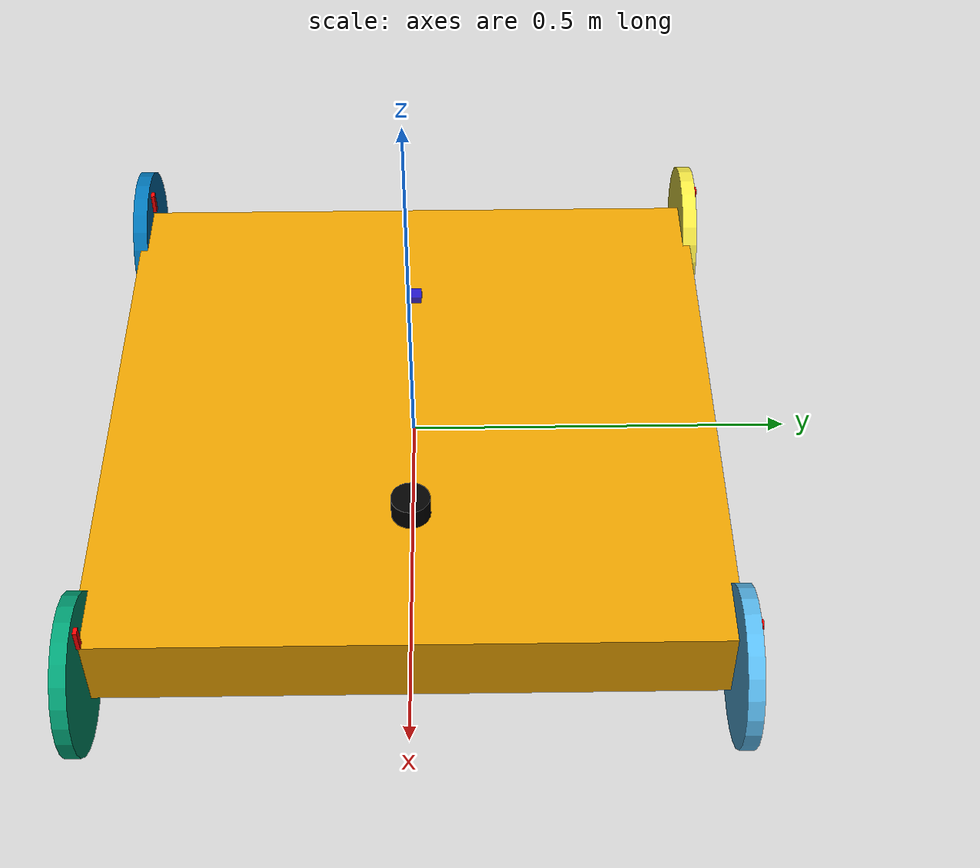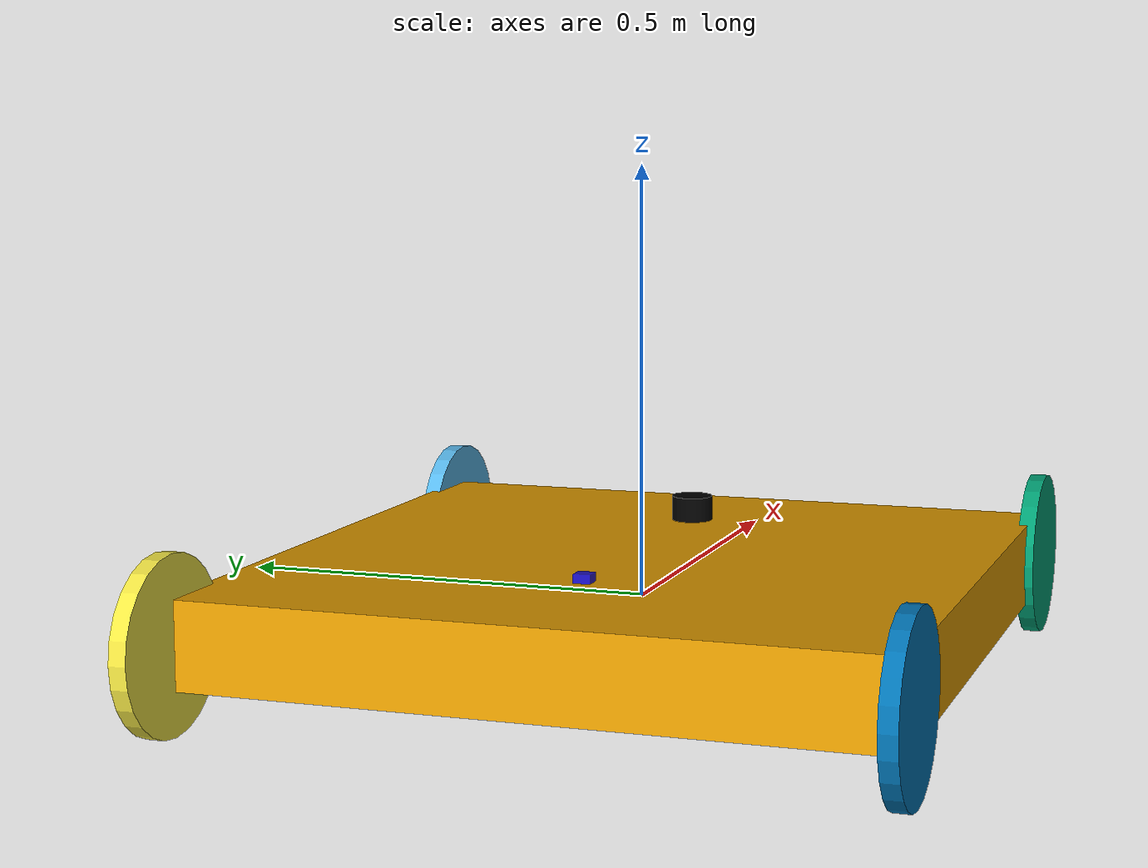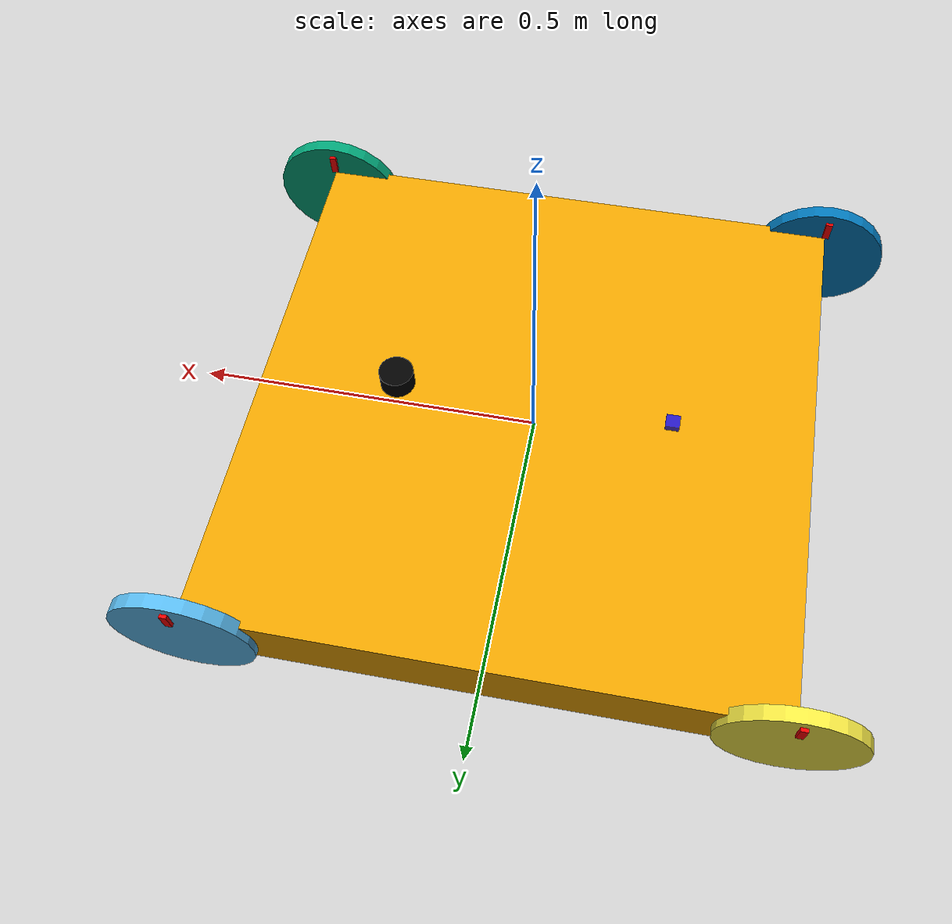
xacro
<?xml version="1.0"?>
<robot xmlns:xacro="http://www.ros.org/wiki/xacro" name="myfirst">

  <link name="base_link">
    <visual>
      <geometry>
        <!-- 长方体的长宽高 -->
        <box size="0.8 0.8 0.1" />
      </geometry>
      <origin xyz="0 0 0" rpy="0 0 0" />
    </visual>
    <collision>
      <geometry><box size="0.8 0.8 0.1"/></geometry>
    </collision>
    <inertial>
      <mass value="10.0"/>
      <inertia ixx="0.542" ixy="0" ixz="0" iyy="0.542" iyz="0" izz="1.067"/>
    </inertial>
  </link>

  <link name="left_front_wheel">
    <visual>
      <!-- 只管朝向:圆柱默认轴 z,转 90° 让轮轴沿 y -->
      <origin xyz="0 0 0" rpy="${pi/2} 0 0"/>
      <geometry><cylinder radius="0.1" length="0.02"/></geometry>
    </visual>
    <!-- 转动标记:纯色圆柱绕轴转看不出来,贴个红块让旋转可见 -->
    <visual>
      <origin xyz="0 0.012 0.07" rpy="0 0 0"/>
      <geometry><box size="0.01 0.006 0.03"/></geometry>
      <material name="red"/>
    </visual>
    <collision>
      <origin xyz="0 0 0" rpy="${pi/2} 0 0"/>
      <geometry><cylinder radius="0.1" length="0.02"/></geometry>
    </collision>
    <inertial>
      <mass value="1.0"/>
      <inertia ixx="0.00253" ixy="0" ixz="0" iyy="0.005" iyz="0" izz="0.00253"/>
    </inertial>
  </link>

  <!-- 没有 joint 就没有 TF,RViz 会把轮子整个隐藏 -->
  <joint name="left_front_wheel_joint" type="continuous">
    <parent link="base_link"/>
    <child link="left_front_wheel"/>
    <origin xyz="0.4 0.4 0" rpy="0 0 0"/>
    <axis xyz="0 1 0"/>
  </joint>

  <link name="right_front_wheel">
    <visual>
      <!-- 只管朝向:圆柱默认轴 z,转 90° 让轮轴沿 y -->
      <origin xyz="0 0 0" rpy="${pi/2} 0 0"/>
      <geometry><cylinder radius="0.1" length="0.02"/></geometry>
    </visual>
    <!-- 转动标记:纯色圆柱绕轴转看不出来,贴个红块让旋转可见 -->
    <visual>
      <origin xyz="0 0.012 0.07" rpy="0 0 0"/>
      <geometry><box size="0.01 0.006 0.03"/></geometry>
      <material name="red"/>
    </visual>
    <collision>
      <origin xyz="0 0 0" rpy="${pi/2} 0 0"/>
      <geometry><cylinder radius="0.1" length="0.02"/></geometry>
    </collision>
    <inertial>
      <mass value="1.0"/>
      <inertia ixx="0.00253" ixy="0" ixz="0" iyy="0.005" iyz="0" izz="0.00253"/>
    </inertial>
  </link>

  <!-- 没有 joint 就没有 TF,RViz 会把轮子整个隐藏 -->
  <joint name="right_front_wheel_joint" type="continuous">
    <parent link="base_link"/>
    <child link="right_front_wheel"/>
    <origin xyz="0.4 -0.4 0" rpy="0 0 0"/>
    <axis xyz="0 1 0"/>
  </joint>

  <link name="left_back_wheel">
    <visual>
      <!-- 只管朝向:圆柱默认轴 z,转 90° 让轮轴沿 y -->
      <origin xyz="0 0 0" rpy="${pi/2} 0 0"/>
      <geometry><cylinder radius="0.1" length="0.02"/></geometry>
    </visual>
    <!-- 转动标记:纯色圆柱绕轴转看不出来,贴个红块让旋转可见 -->
    <visual>
      <origin xyz="0 0.012 0.07" rpy="0 0 0"/>
      <geometry><box size="0.01 0.006 0.03"/></geometry>
      <material name="red"/>
    </visual>
    <collision>
      <origin xyz="0 0 0" rpy="${pi/2} 0 0"/>
      <geometry><cylinder radius="0.1" length="0.02"/></geometry>
    </collision>
    <inertial>
      <mass value="1.0"/>
      <inertia ixx="0.00253" ixy="0" ixz="0" iyy="0.005" iyz="0" izz="0.00253"/>
    </inertial>
  </link>

  <!-- 没有 joint 就没有 TF,RViz 会把轮子整个隐藏 -->
  <joint name="left_back_wheel_joint" type="continuous">
    <parent link="base_link"/>
    <child link="left_back_wheel"/>
    <origin xyz="-0.4 0.4 0" rpy="0 0 0"/>
    <axis xyz="0 1 0"/>
  </joint>

  <link name="right_back_wheel">
    <visual>
      <!-- 只管朝向:圆柱默认轴 z,转 90° 让轮轴沿 y -->
      <origin xyz="0 0 0" rpy="${pi/2} 0 0"/>
      <geometry><cylinder radius="0.1" length="0.02"/></geometry>
    </visual>
    <!-- 转动标记:纯色圆柱绕轴转看不出来,贴个红块让旋转可见 -->
    <visual>
      <origin xyz="0 0.012 0.07" rpy="0 0 0"/>
      <geometry><box size="0.01 0.006 0.03"/></geometry>
      <material name="red"/>
    </visual>
    <collision>
      <origin xyz="0 0 0" rpy="${pi/2} 0 0"/>
      <geometry><cylinder radius="0.1" length="0.02"/></geometry>
    </collision>
    <inertial>
      <mass value="1.0"/>
      <inertia ixx="0.00253" ixy="0" ixz="0" iyy="0.005" iyz="0" izz="0.00253"/>
    </inertial>
  </link>

  <!-- 没有 joint 就没有 TF,RViz 会把轮子整个隐藏 -->
  <joint name="right_back_wheel_joint" type="continuous">
    <parent link="base_link"/>
    <child link="right_back_wheel"/>
    <origin xyz="-0.4 -0.4 0" rpy="0 0 0"/>
    <axis xyz="0 1 0"/>
  </joint>

  <!-- 顶部统一定义材质,全局一次 -->
<material name="blue"><color rgba="0 0 1 0.8"/></material>
<material name="black"><color rgba="0 0 0 0.9"/></material>
<material name="red"><color rgba="1 0 0 1"/></material>

<!-- ============ IMU:一个小盒,装在底盘中心上方 ============ -->
<link name="imu_link">
  <visual>
    <geometry><box size="0.02 0.02 0.01"/></geometry>
    <material name="blue"/>
  </visual>
  <inertial>
    <mass value="0.01"/>
    <inertia ixx="4.2e-7" ixy="0" ixz="0" iyy="4.2e-7" iyz="0" izz="6.7e-7"/>
  </inertial>
</link>
<joint name="imu_joint" type="fixed">
  <parent link="base_link"/>
  <child link="imu_link"/>
  <origin xyz="-0.2 0 0.06" rpy="0 0 0"/>   <!-- 这就是 IMU 的安装外参 -->
</joint>

<!-- ============ 激光雷达:一个扁圆柱,装在车头 ============ -->
<link name="laser_link">
  <visual>
    <geometry><cylinder radius="0.025" length="0.03"/></geometry>
    <material name="black"/>
  </visual>
  <inertial>
    <mass value="0.05"/>
    <inertia ixx="1.16e-5" ixy="0" ixz="0" iyy="1.16e-5" iyz="0" izz="1.56e-5"/>
  </inertial>
</link>
<joint name="laser_joint" type="fixed">
  <parent link="base_link"/>
  <child link="laser_link"/>
  <origin xyz="0.2 0 0.07" rpy="0 0 0"/>    <!-- 雷达安装位姿,必须与实物/仿真一致 -->
</joint>

<ros2_control name="MyRobotGazeboSystem" type="system">   <!-- name 随意;type: system/sensor/actuator -->
  <hardware>
    <plugin>gazebo_ros2_control/GazeboSystem</plugin>     <!-- 核心一格:选硬件后端,见下 -->
  </hardware>

    <joint name="left_front_wheel_joint">
      <command_interface name="velocity">
        <param name="min">-1</param>
        <param name="max">1</param>
      </command_interface>
      <state_interface name="position"/>
      <state_interface name="velocity"/>
    </joint>
    <joint name="right_front_wheel_joint">
      <command_interface name="velocity">
        <param name="min">-1</param>
        <param name="max">1</param>
      </command_interface>
      <state_interface name="position"/>
      <state_interface name="velocity"/>
    </joint>
    <joint name="left_back_wheel_joint">
      <command_interface name="velocity">
        <param name="min">-1</param>
        <param name="max">1</param>
      </command_interface>
      <state_interface name="position"/>
      <state_interface name="velocity"/>
    </joint>
    <joint name="right_back_wheel_joint">
      <command_interface name="velocity">
        <param name="min">-1</param>
        <param name="max">1</param>
      </command_interface>
      <state_interface name="position"/>
      <state_interface name="velocity"/>
    </joint></ros2_control>

<gazebo>
  <plugin filename="ign_ros2_control-system" name="ign_ros2_control::IgnitionROS2ControlPlugin">
    <parameters>$(find myrobot_description)/config/ros2_controller.yaml</parameters>
    <ros>
      <remapping>/diff_drive_controller/cmd_vel_unstamped:=/cmd_vel</remapping>
      <remapping>/diff_drive_controller/odom:=/odom</remapping>
    </ros>
  </plugin>
</gazebo>

<gazebo reference="laser_link">
  <sensor name="laser" type="gpu_lidar">
    <pose>0 0 0 0 0 0</pose>
    <visualize>true</visualize>              <!-- 在 Gazebo 里画出红色扫描线 -->
    <update_rate>10</update_rate>
    <topic>scan</topic>            <!-- 发到 Ignition 传输层,由桥接转成 ROS /scan -->            <!-- 每秒 10 帧扫描 -->
    <ray>
      <scan>
        <horizontal>
          <samples>360</samples>             <!-- 一圈采 360 个点,约 1° 分辨率 -->
          <resolution>1</resolution>
          <min_angle>-3.1415926</min_angle>  <!-- -180°( REP-103:0° 朝 x,逆时针为正)-->
          <max_angle>3.1415926</max_angle>   <!-- +180°,即 360° 全向 -->
        </horizontal>
      </scan>
      <range>
        <min>0.12</min>                      <!-- 最小盲区(实物雷达贴脸测不到)-->
        <max>8.0</max>                       <!-- 最大量程 8 m -->
        <resolution>0.01</resolution>
      </range>
      <noise>
        <type>gaussian</type>
        <stddev>0.01</stddev>                <!-- 模拟测量噪声 -->
      </noise>
    </ray>
  </sensor>
</gazebo>

<gazebo reference="imu_link">
  <sensor name="imu" type="imu">
    <always_on>true</always_on>
    <update_rate>100</update_rate>
    <topic>imu/data</topic>           <!-- IMU 惯例 100Hz 起步 -->
    <visualize>false</visualize>
  </sensor>
</gazebo>

</robot>
